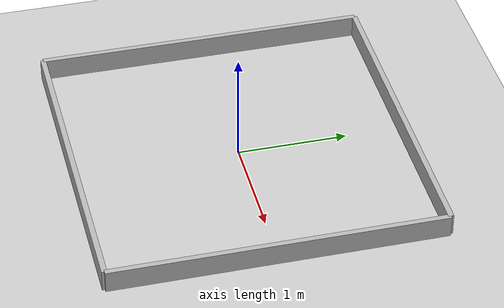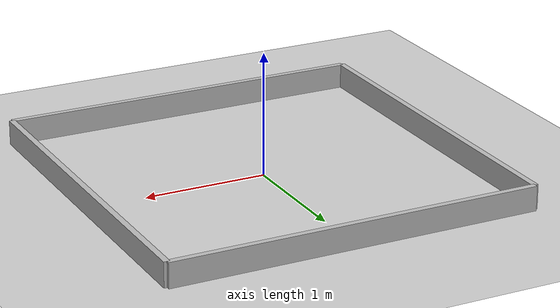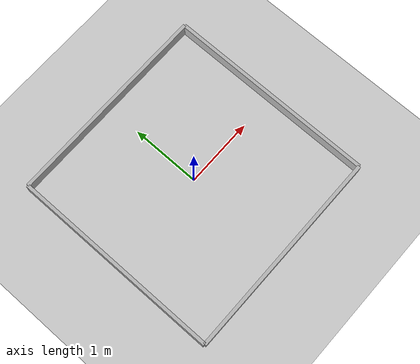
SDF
<?xml version="1.0"?>
<sdf version="1.8">
  <world name="arena">
    <physics name="1ms" type="ignored">
      <max_step_size>0.001</max_step_size>
      <real_time_factor>1.0</real_time_factor>
    </physics>
    <plugin filename="gz-sim-physics-system" name="gz::sim::systems::Physics"/>
    <plugin filename="gz-sim-user-commands-system" name="gz::sim::systems::UserCommands"/>
    <plugin filename="gz-sim-scene-broadcaster-system" name="gz::sim::systems::SceneBroadcaster"/>
    <plugin filename="gz-sim-sensors-system" name="gz::sim::systems::Sensors">
      <render_engine>ogre2</render_engine>
    </plugin>
    <light type="directional" name="sun">
      <cast_shadows>true</cast_shadows>
      <pose>0 0 10 0 0 0</pose>
      <diffuse>0.8 0.8 0.8 1</diffuse>
      <direction>-0.5 0.1 -0.9</direction>
    </light>
    <model name="ground_plane">
      <static>true</static>
      <link name="link">
        <collision name="collision">
          <geometry><plane><normal>0 0 1</normal><size>20 20</size></plane></geometry>
        </collision>
        <visual name="visual">
          <geometry><plane><normal>0 0 1</normal><size>20 20</size></plane></geometry>
          <material><ambient>0.8 0.8 0.8 1</ambient><diffuse>0.8 0.8 0.8 1</diffuse></material>
        </visual>
      </link>
    </model>
    <!-- A 3 m x 3 m walled arena so you have something to drive around -->
    <model name="walls">
      <static>true</static>
      <link name="link">
        <collision name="n"><pose>0 1.5 0.1 0 0 0</pose><geometry><box><size>3 0.05 0.2</size></box></geometry></collision>
        <visual name="n"><pose>0 1.5 0.1 0 0 0</pose><geometry><box><size>3 0.05 0.2</size></box></geometry></visual>
        <collision name="s"><pose>0 -1.5 0.1 0 0 0</pose><geometry><box><size>3 0.05 0.2</size></box></geometry></collision>
        <visual name="s"><pose>0 -1.5 0.1 0 0 0</pose><geometry><box><size>3 0.05 0.2</size></box></geometry></visual>
        <collision name="e"><pose>1.5 0 0.1 0 0 0</pose><geometry><box><size>0.05 3 0.2</size></box></geometry></collision>
        <visual name="e"><pose>1.5 0 0.1 0 0 0</pose><geometry><box><size>0.05 3 0.2</size></box></geometry></visual>
        <collision name="w"><pose>-1.5 0 0.1 0 0 0</pose><geometry><box><size>0.05 3 0.2</size></box></geometry></collision>
        <visual name="w"><pose>-1.5 0 0.1 0 0 0</pose><geometry><box><size>0.05 3 0.2</size></box></geometry></visual>
      </link>
    </model>
  </world>
</sdf>
